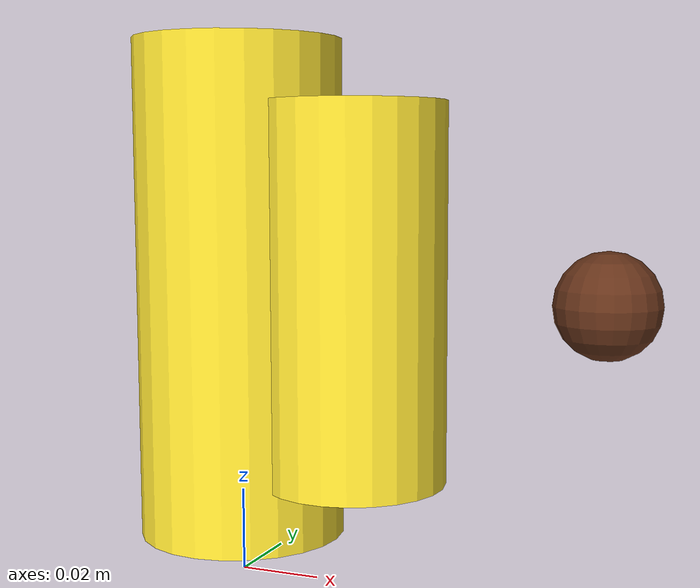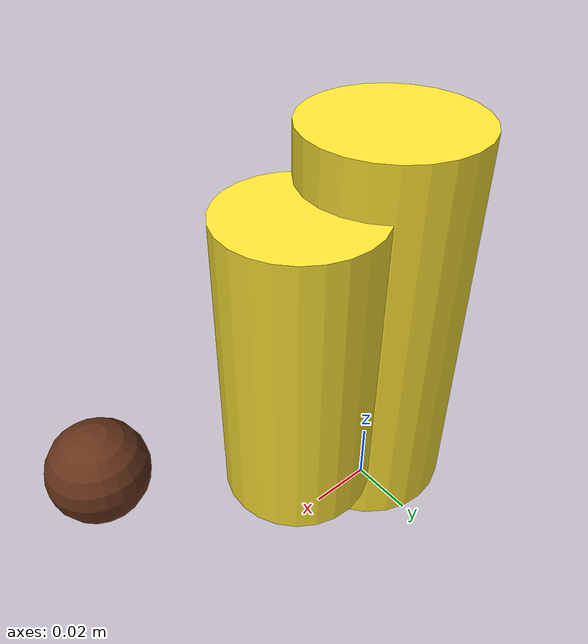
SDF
<?xml version="1.0"?>
<sdf version="1.7">
  <model name="banana">
    <static>true</static>
    <link name="banana_link">
      <!-- Banana body: yellow curved cylinders -->
      <visual name="banana_body_1">
        <pose>0 0 0.07 0 0 0.3</pose>
        <geometry>
          <cylinder>
            <radius>0.025</radius>
            <length>0.12</length>
          </cylinder>
        </geometry>
        <material>
          <ambient>1 0.9 0.2 1</ambient>
          <diffuse>1 0.9 0.2 1</diffuse>
        </material>
      </visual>
      <visual name="banana_body_2">
        <pose>0.03 0 0.07 0 0 0.6</pose>
        <geometry>
          <cylinder>
            <radius>0.022</radius>
            <length>0.09</length>
          </cylinder>
        </geometry>
        <material>
          <ambient>1 0.9 0.2 1</ambient>
          <diffuse>1 0.9 0.2 1</diffuse>
        </material>
      </visual>
      <!-- Banana tip: brown sphere -->
      <visual name="banana_tip">
        <pose>0.09 0 0.07 0 0 0</pose>
        <geometry>
          <sphere>
            <radius>0.012</radius>
          </sphere>
        </geometry>
        <material>
          <ambient>0.4 0.2 0.1 1</ambient>
          <diffuse>0.4 0.2 0.1 1</diffuse>
        </material>
      </visual>
    </link>
  </model>
</sdf>
